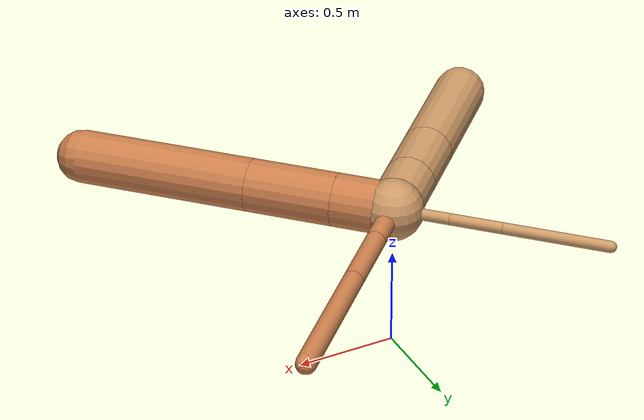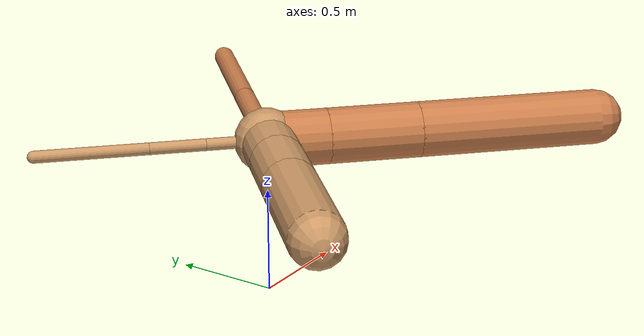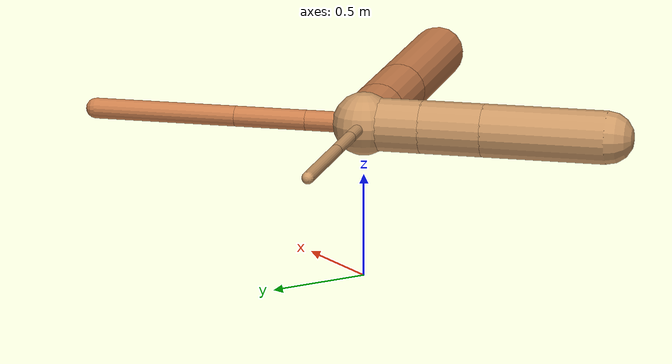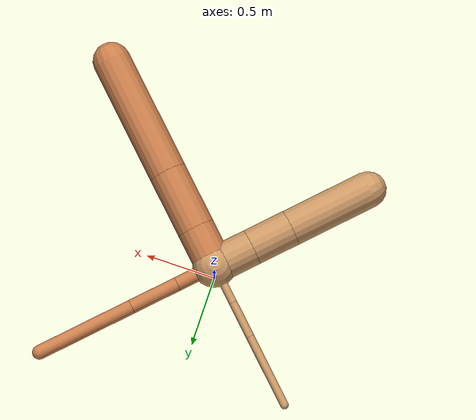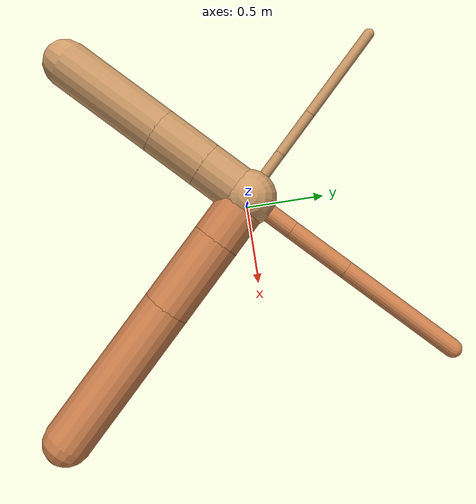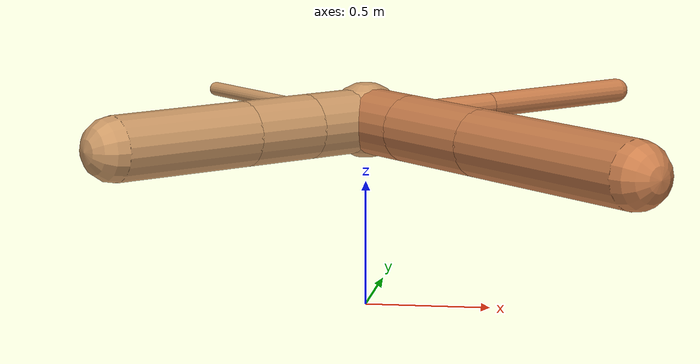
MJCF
<?xml version="1.0" ?>
<mujoco model="ant">

	<compiler angle="degree" coordinate="local" inertiafromgeom="true"/>

	<option integrator="RK4" timestep="0.01"/>

	<custom>

		<numeric data="0.0 0.0 0.55 1.0 0.0 0.0 0.0 0.0 1.0 0.0 -1.0 0.0 -1.0 0.0 1.0" name="init_qpos"/>

	</custom>

	<default>

		<joint armature="1" damping="1" limited="true"/>

		<geom conaffinity="0" condim="3" density="5.0" friction="1.5 0.1 0.1" margin="0.01" rgba="0.8 0.6 0.4 1"/>

	</default>

	<worldbody>

		<body name="torso" pos="0 0 0.75">

			<geom name="torso_geom" pos="0 0 0" size="0.1512428650053101" type="sphere"/>

			<!--joint armature="0" damping="0" limited="false" margin="0.01" name="root" pos="0 0 0" type="free"/-->

			<body name="front_left_leg" pos="0 0 0">

				<geom fromto="0 0 0 0.2 0.2 0" name="aux_1_geom" size="0.049467039898094124" type="capsule" rgba=".8 .5 .3 1"/>

				<body name="aux_1" pos="0.2 0.2 0">

					<joint axis="0 0 1" name="hip_1" pos="0.0 0.0 0.0" range="-40 40" type="hinge"/>

					<geom fromto="0 0 0 0.2467072666600878 0.2467072666600878 0" name="left_leg_geom" size="0.049467039898094124" type="capsule" rgba=".8 .5 .3 1"/>

					<body pos="0.2467072666600878 0.2467072666600878 0" name="front_left_foot">

						<joint axis="-1 1 0" name="ankle_1" pos="0.0 0.0 0.0" range="30 100" type="hinge"/>

						<geom fromto="0 0 0 0.4934145333201756 0.4934145333201756 0" name="left_ankle_geom" size="0.049467039898094124" type="capsule" rgba=".8 .5 .3 1"/>

					</body>

				</body>

			</body>

			<body name="front_right_leg" pos="0 0 0">

				<geom fromto="0 0 0 -0.2 0.2 0" name="aux_2_geom" size="0.028659406464765454" type="capsule"/>

				<body name="aux_2" pos="-0.2 0.2 0">

					<joint axis="0 0 1" name="hip_2" pos="0.0 0.0 0.0" range="-40 40" type="hinge"/>

					<geom fromto="0 0 0 -0.18382795947755348 0.18382795947755348 0" name="right_leg_geom" size="0.028659406464765454" type="capsule"/>

					<body pos="-0.18382795947755348 0.18382795947755348 0" name="front_right_foot">

						<joint axis="1 1 0" name="ankle_2" pos="0.0 0.0 0.0" range="-100 -30" type="hinge"/>

						<geom fromto="0 0 0 -0.36765591895510696 0.36765591895510696 0" name="right_ankle_geom" size="0.028659406464765454" type="capsule"/>

					</body>

				</body>

			</body>

			<body name="left_back_leg" pos="0 0 0">

				<geom fromto="0 0 0 -0.2 -0.2 0" name="aux_3_geom" size="0.12713883003507895" type="capsule"/>

				<body name="aux_3" pos="-0.2 -0.2 0">

					<joint axis="0 0 1" name="hip_3" pos="0.0 0.0 0.0" range="-40 40" type="hinge"/>

					<geom fromto="0 0 0 -0.21015337445576573 -0.21015337445576573 0" name="back_leg_geom" size="0.12713883003507895" type="capsule"/>

					<body pos="-0.21015337445576573 -0.21015337445576573 0" name="left_back_foot">

						<joint axis="-1 1 0" name="ankle_3" pos="0.0 0.0 0.0" range="-100 -30" type="hinge"/>

						<geom fromto="0 0 0 -0.42030674891153147 -0.42030674891153147 0" name="third_ankle_geom" size="0.12713883003507895" type="capsule"/>

					</body>

				</body>

			</body>

			<body name="right_back_leg" pos="0 0 0">

				<geom fromto="0 0 0 0.2 -0.2 0" name="aux_4_geom" size="0.1314868795193894" type="capsule" rgba=".8 .5 .3 1"/>

				<body name="aux_4" pos="0.2 -0.2 0">

					<joint axis="0 0 1" name="hip_4" pos="0.0 0.0 0.0" range="-40 40" type="hinge"/>

					<geom fromto="0 0 0 0.3074342022037637 -0.3074342022037637 0" name="rightback_leg_geom" size="0.1314868795193894" type="capsule" rgba=".8 .5 .3 1"/>

					<body pos="0.3074342022037637 -0.3074342022037637 0" name="right_back_foot">

						<joint axis="1 1 0" name="ankle_4" pos="0.0 0.0 0.0" range="30 100" type="hinge"/>

						<geom fromto="0 0 0 0.6148684044075274 -0.6148684044075274 0" name="fourth_ankle_geom" size="0.1314868795193894" type="capsule" rgba=".8 .5 .3 1"/>

					</body>

				</body>

			</body>

		</body>

	</worldbody>

	<actuator>

		<motor ctrllimited="true" ctrlrange="-1.0 1.0" joint="hip_4" gear="150"/>

		<motor ctrllimited="true" ctrlrange="-1.0 1.0" joint="ankle_4" gear="150"/>

		<motor ctrllimited="true" ctrlrange="-1.0 1.0" joint="hip_1" gear="150"/>

		<motor ctrllimited="true" ctrlrange="-1.0 1.0" joint="ankle_1" gear="150"/>

		<motor ctrllimited="true" ctrlrange="-1.0 1.0" joint="hip_2" gear="150"/>

		<motor ctrllimited="true" ctrlrange="-1.0 1.0" joint="ankle_2" gear="150"/>

		<motor ctrllimited="true" ctrlrange="-1.0 1.0" joint="hip_3" gear="150"/>

		<motor ctrllimited="true" ctrlrange="-1.0 1.0" joint="ankle_3" gear="150"/>

	</actuator>

</mujoco>
